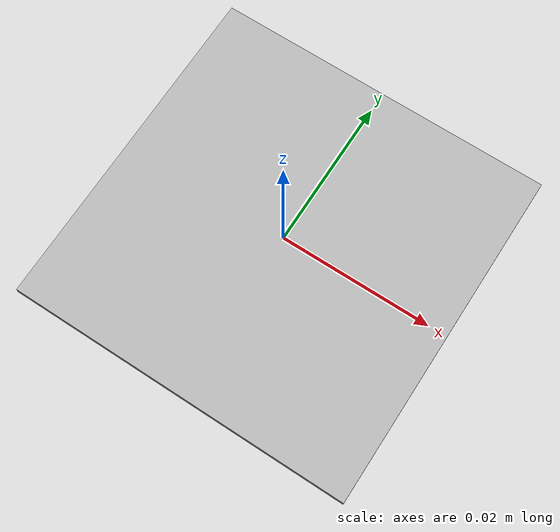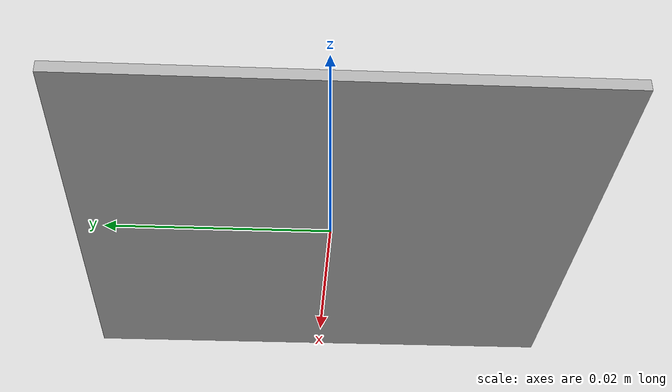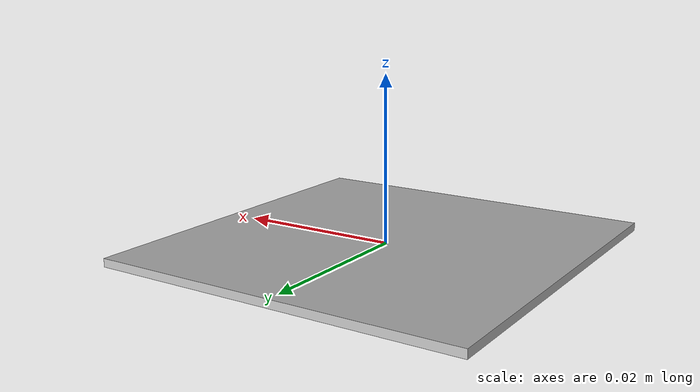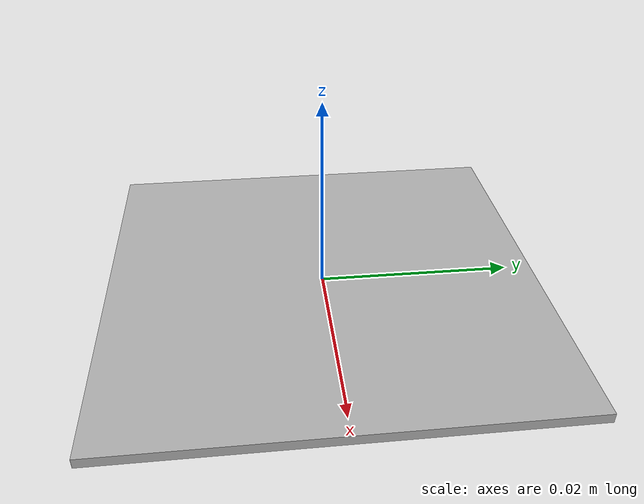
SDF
<?xml version="1.0" ?>
<sdf version="1.6">
    <model name="AR_marker_01">
        <static>true</static>
        <link name="link">
            <visual name="visual">
                <geometry>
                    <box>
                        <size>0.045 0.045 0.001</size>
                    </box>
                </geometry>
                <material>
                    <script>
                        <uri>model://AR_Marker_01/materials/scripts</uri>
                        <uri>model://AR_Marker_01/materials/textures</uri>
                        <name>AR_Marker_01/Material</name>
                    </script>
                </material>
            </visual>
        </link>
    </model>
</sdf>
